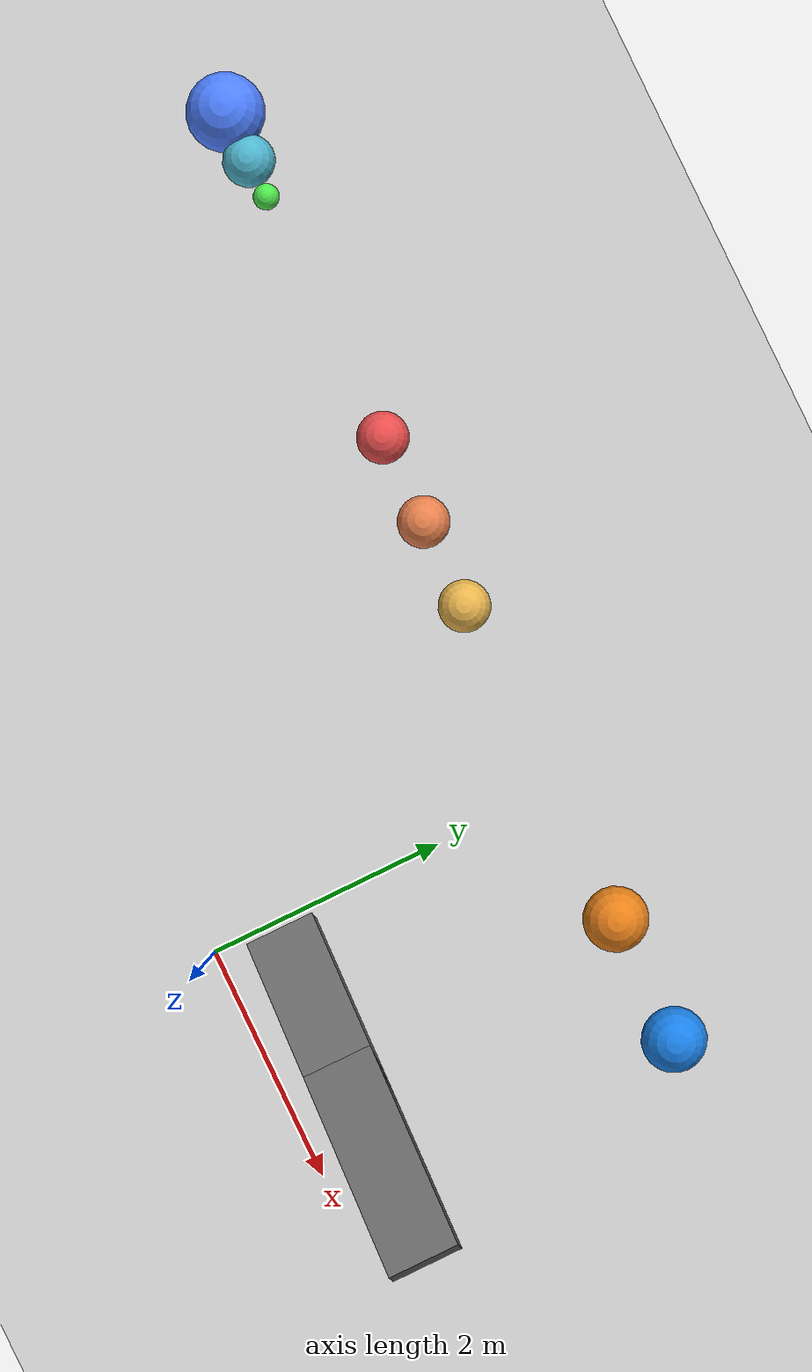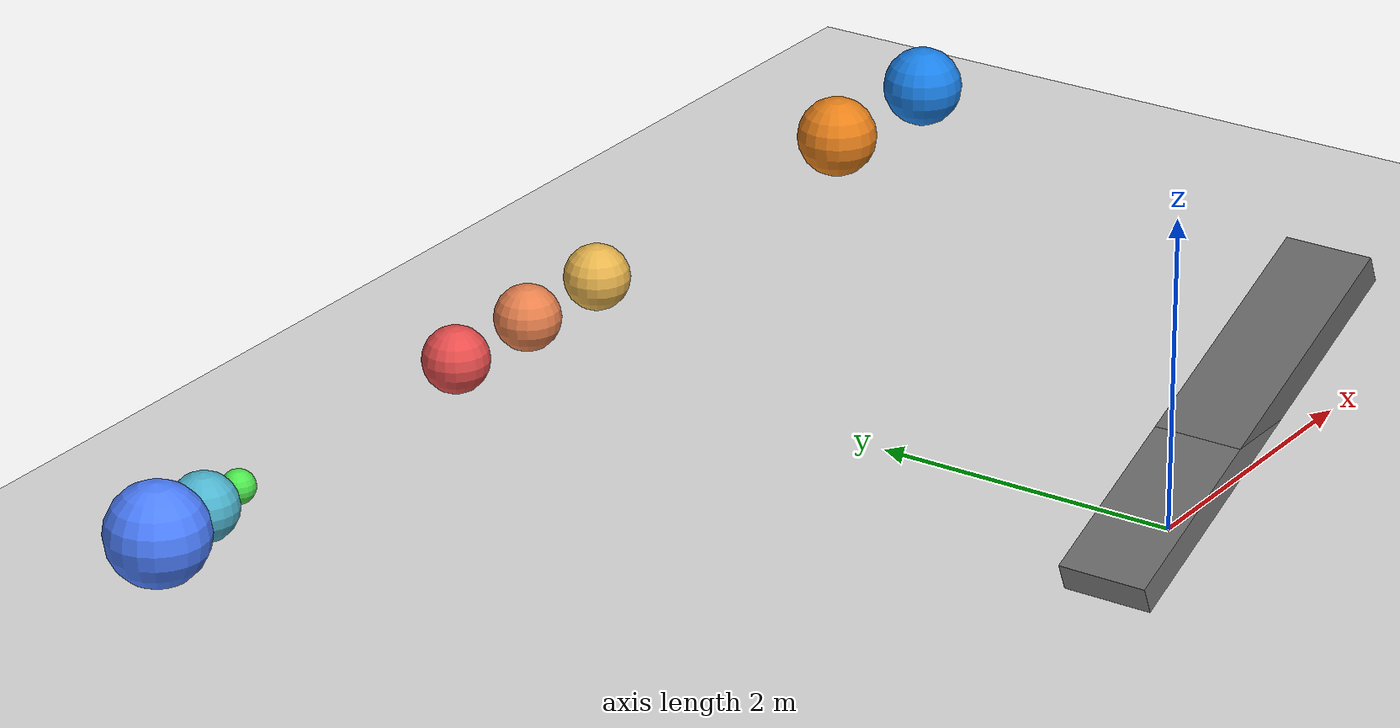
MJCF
<!-- mass vs density 和 shellinertia 演示 -->
<mujoco model="mass_density">
    <compiler angle="radian"/>
    <option timestep="0.002" gravity="0 0 -9.81"/>

    <visual>
        <global realtime="1"/>
        <quality shadowsize="1024"/>
        <headlight diffuse="1 1 1" specular="0.5 0.5 0.5" active="1"/>
    </visual>

    <asset>
        <texture name="grid" type="2d" builtin="checker" width="512" height="512"
                 rgb1=".2 .2 .2" rgb2=".8 .8 .8"/>
        <material name="grid" texture="grid"/>
    </asset>

    <!--
    mass 和 density 二选一:
    - mass: 直接指定质量(kg)，不论体积大小
    - density: 指定密度(kg/m³)，MuJoCo根据几何体体积自动计算质量
    - shellinertia: true=质量集中在边缘(中空感)，false=均匀密度
    -->
    <worldbody>
        <geom name="floor" type="plane" size="20 20 .01" material="grid" condim="3"/>

        <!-- 相同大小，不同mass: 越重落地越快 -->
        <body pos="-3 3 1.5">
            <freejoint/>
            <geom type="sphere" size="0.2" rgba=".9 .3 .3 1" mass="0.1"/>
        </body>
        <body pos="-2.3 3 1.5">
            <freejoint/>
            <geom type="sphere" size="0.2" rgba=".9 .5 .3 1" mass="1"/>
        </body>
        <body pos="-1.6 3 1.5">
            <freejoint/>
            <geom type="sphere" size="0.2" rgba=".9 .7 .3 1" mass="10"/>
        </body>

        <!-- 相同density，不同体积: 自然质量不同 -->
        <body pos="-5 3 1.5">
            <freejoint/>
            <geom type="sphere" size="0.1" rgba=".3 .9 .3 1" density="1000"/>
        </body>
        <body pos="-5.3 3 1.5">
            <freejoint/>
            <geom type="sphere" size="0.2" rgba=".3 .7 .8 1" density="1000"/>
        </body>
        <body pos="-5.7 3 1.5">
            <freejoint/>
            <geom type="sphere" size="0.3" rgba=".3 .5 1 1" density="1000"/>
        </body>

        <!-- shellinertia对比: 相同质量和大小的空心球 vs 实心球 -->
        <body pos="1 3 1.5">
            <freejoint/>
            <!-- shellinertia=true: 质量集中在球壳表面，转动惯量大，转得慢 -->
            <geom type="sphere" size="0.25" rgba=".9 .5 .1 1"
                  mass="1" shellinertia="true"/>
        </body>
        <body pos="2 3 1.5">
            <freejoint/>
            <!-- shellinertia=false(默认): 均匀密度，转动惯量小，转得快 -->
            <geom type="sphere" size="0.25" rgba=".1 .5 .9 1"
                  mass="1" shellinertia="false"/>
        </body>

        <!-- 斜面用于观察滚动加速度差异 -->
        <body pos="1.5 0.5 0" euler="0 -.4 0">
            <geom type="box" size="1.5 .3 .1" rgba=".4 .4 .4 1"/>
        </body>

        <!-- buoyancy演示: 不同密度的物体会表现出不同的浮力效果 -->
        <!-- (需配合option中的density和viscosity参数) -->
    </worldbody>
</mujoco>
